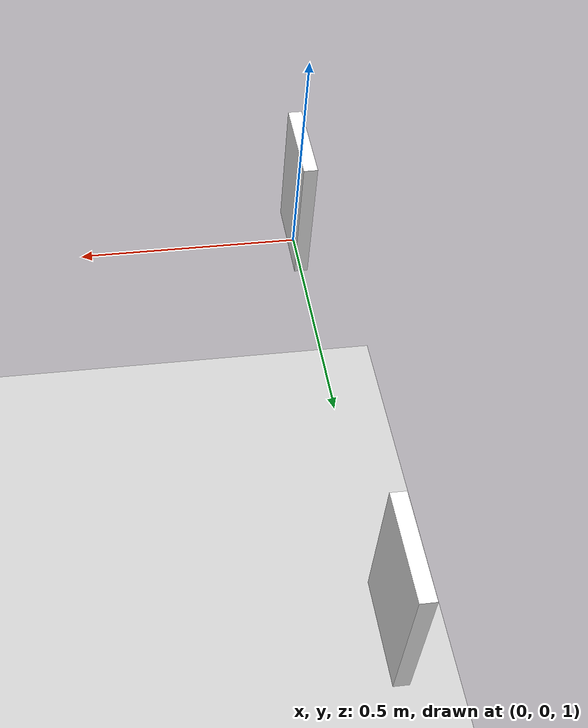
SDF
<?xml version="1.0" ?>
<sdf version="1.7">
    <world name="myplugin_world">
        <physics name="1ms" type="ignored">
            <max_step_size>0.001</max_step_size>
            <real_time_factor>1.0</real_time_factor>
        </physics>
        <plugin filename="libignition-gazebo-physics-system.so" name="ignition::gazebo::systems::Physics"/>
        <plugin filename="libignition-gazebo-user-commands-system.so" name="ignition::gazebo::systems::UserCommands"/>
        <plugin filename="libignition-gazebo-scene-broadcaster-system.so" name="ignition::gazebo::systems::SceneBroadcaster"/>

        <!-- Sun Light -->
        <light type="directional" name="sun">
            <cast_shadows>true</cast_shadows>
            <pose>0 0 10 0 0 0</pose>
            <diffuse>0.8 0.8 0.8 1</diffuse>
            <specular>0.2 0.2 0.2 1</specular>
            <attenuation>
                <range>1000</range>
                <constant>0.9</constant>
                <linear>0.01</linear>
                <quadratic>0.001</quadratic>
            </attenuation>
            <direction>-0.5 0.1 -0.9</direction>
        </light>

        <!-- Ground Plane -->
        <model name="ground_plane">
            <static>true</static>
            <link name="link">
                <collision name="collision">
                    <geometry>
                        <plane>
                            <normal>0 0 1</normal>
                        </plane>
                    </geometry>
                </collision>
                <visual name="visual">
                    <geometry>
                        <plane>
                            <normal>0 0 1</normal>
                            <size>100 100</size>
                        </plane>
                    </geometry>
                    <material>
                        <ambient>0.8 0.8 0.8 1</ambient>
                        <diffuse>0.8 0.8 0.8 1</diffuse>
                        <specular>0.8 0.8 0.8 1</specular>
                    </material>
                </visual>
            </link>
        </model>

        <!-- Include Gnb1 -->
        <include>
            <uri>model://phine_gNB</uri>
            <name>gNB1</name>
            <pose>0 0 1 0 0 0</pose>
            <plugin name="phine_plugins::gNB_plugin" filename="gNB_plugin">
                    <link_name>phine_cell</link_name>
                    <net_name>phine-net</net_name>
                    <IP_GNB>192.168.70.159</IP_GNB>
                    <IP_AMF>192.168.70.132</IP_AMF>
                    <debug>false</debug>
                    <mobile_country_code>001</mobile_country_code>
                    <mobile_network_code>01</mobile_network_code>
            </plugin>
        </include>
        <!-- Include Gnb2 -->
        <include>
            <uri>model://phine_gNB</uri>
            <name>gNB2</name>
            <pose>0 1 1 0 0 -3.14</pose>
            <plugin name="phine_plugins::gNB_plugin" filename="gNB_plugin">
                    <link_name>phine_cell</link_name>
                    <net_name>phine-net</net_name>
                    <IP_GNB>192.168.70.160</IP_GNB>
                    <IP_AMF>192.168.70.132</IP_AMF>
                    <debug>false</debug>
                    <mobile_country_code>001</mobile_country_code>
                    <mobile_network_code>01</mobile_network_code>
            </plugin>
        </include>
    </world>
</sdf>

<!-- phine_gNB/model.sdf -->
<sdf version="1.7">
  <model name="phine_gNB">
        <link name='phine_cell'>
            <pose>0 0 0.15 0 0 0</pose>
            <collision name='collision'>
                <geometry>
                    <box>
                        <size>0.03 0.2 0.3</size>
                    </box>
                </geometry>
            </collision>
            <visual name='visual'>
                <geometry>
                    <box>
                        <size>0.03 0.2 0.3</size>
                    </box>
                </geometry>
                <material>
                    <ambient>1 1 1 1</ambient>
                    <diffuse>1 1 1 1</diffuse>
                    <specular>1 1 1 1</specular>
                </material>
            </visual>
            <gravity>0</gravity>
        </link>
  </model>
</sdf>
